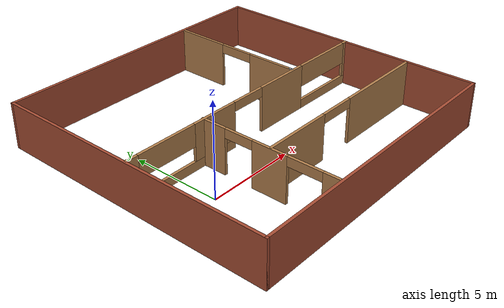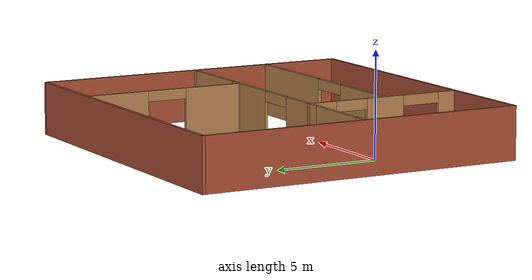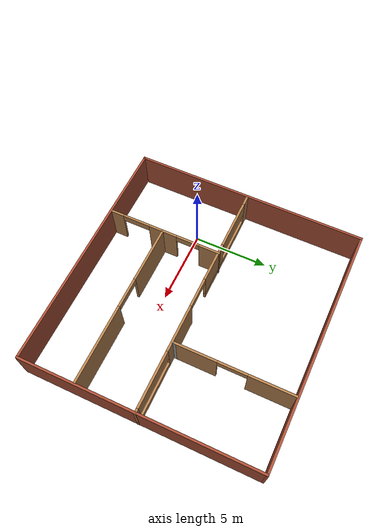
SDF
<?xml version='1.0'?>
<sdf version='1.6'>
  <model name='new_building'>
    <pose frame=''>5.0579 2.3979 0 0 -0 0</pose>
    <link name='Wall_10'>
      <pose frame=''>0.009337 -0.088235 0 0 -0 0</pose>
      <visual name='Wall_10_Visual_0'>
        <pose frame=''>-7.74118 0 1.25 0 -0 0</pose>
        <geometry>
          <box>
            <size>0.767634 0.15 2.5</size>
          </box>
        </geometry>
        <material>
          <script>
            <uri>file://media/materials/scripts/gazebo.material</uri>
            <name>Gazebo/Wood</name>
          </script>
          <ambient>0.435294 0.796078 0.67451 1</ambient>
        </material>
        <meta>
          <layer>0</layer>
        </meta>
      </visual>
      <collision name='Wall_10_Collision_0'>
        <geometry>
          <box>
            <size>0.767634 0.15 2.5</size>
          </box>
        </geometry>
        <pose frame=''>-7.74118 0 1.25 0 -0 0</pose>
      </collision>
      <visual name='Wall_10_Visual_1'>
        <pose frame=''>2.43175 0 1.25 0 -0 0</pose>
        <geometry>
          <box>
            <size>3.21266 0.15 2.5</size>
          </box>
        </geometry>
        <material>
          <script>
            <uri>file://media/materials/scripts/gazebo.material</uri>
            <name>Gazebo/Wood</name>
          </script>
          <ambient>0.435294 0.796078 0.67451 1</ambient>
        </material>
        <meta>
          <layer>0</layer>
        </meta>
      </visual>
      <collision name='Wall_10_Collision_1'>
        <geometry>
          <box>
            <size>3.21266 0.15 2.5</size>
          </box>
        </geometry>
        <pose frame=''>2.43175 0 1.25 0 -0 0</pose>
      </collision>
      <visual name='Wall_10_Visual_2'>
        <pose frame=''>-4.26571 0 0.25 0 -0 0</pose>
        <geometry>
          <box>
            <size>6.18331 0.15 0.5</size>
          </box>
        </geometry>
        <material>
          <script>
            <uri>file://media/materials/scripts/gazebo.material</uri>
            <name>Gazebo/Wood</name>
          </script>
          <ambient>0.435294 0.796078 0.67451 1</ambient>
        </material>
        <meta>
          <layer>0</layer>
        </meta>
      </visual>
      <collision name='Wall_10_Collision_2'>
        <geometry>
          <box>
            <size>6.18331 0.15 0.5</size>
          </box>
        </geometry>
        <pose frame=''>-4.26571 0 0.25 0 -0 0</pose>
      </collision>
      <visual name='Wall_10_Visual_3'>
        <pose frame=''>6.08154 0 0.25 0 -0 0</pose>
        <geometry>
          <box>
            <size>4.08692 0.15 0.5</size>
          </box>
        </geometry>
        <material>
          <script>
            <uri>file://media/materials/scripts/gazebo.material</uri>
            <name>Gazebo/Wood</name>
          </script>
          <ambient>0.435294 0.796078 0.67451 1</ambient>
        </material>
        <meta>
          <layer>0</layer>
        </meta>
      </visual>
      <collision name='Wall_10_Collision_3'>
        <geometry>
          <box>
            <size>4.08692 0.15 0.5</size>
          </box>
        </geometry>
        <pose frame=''>6.08154 0 0.25 0 -0 0</pose>
      </collision>
      <visual name='Wall_10_Visual_4'>
        <pose frame=''>-2.54457 0 1.5 0 -0 0</pose>
        <geometry>
          <box>
            <size>2.74103 0.15 2</size>
          </box>
        </geometry>
        <material>
          <script>
            <uri>file://media/materials/scripts/gazebo.material</uri>
            <name>Gazebo/Wood</name>
          </script>
          <ambient>0.435294 0.796078 0.67451 1</ambient>
        </material>
        <meta>
          <layer>0</layer>
        </meta>
      </visual>
      <collision name='Wall_10_Collision_4'>
        <geometry>
          <box>
            <size>2.74103 0.15 2</size>
          </box>
        </geometry>
        <pose frame=''>-2.54457 0 1.5 0 -0 0</pose>
      </collision>
      <visual name='Wall_10_Visual_5'>
        <pose frame=''>-2.54457 0 1.5 0 -0 0</pose>
        <geometry>
          <box>
            <size>2.74103 0.15 2</size>
          </box>
        </geometry>
        <material>
          <script>
            <uri>file://media/materials/scripts/gazebo.material</uri>
            <name>Gazebo/Wood</name>
          </script>
          <ambient>0.435294 0.796078 0.67451 1</ambient>
        </material>
        <meta>
          <layer>0</layer>
        </meta>
      </visual>
      <collision name='Wall_10_Collision_5'>
        <geometry>
          <box>
            <size>2.74103 0.15 2</size>
          </box>
        </geometry>
        <pose frame=''>-2.54457 0 1.5 0 -0 0</pose>
      </collision>
      <visual name='Wall_10_Visual_6'>
        <pose frame=''>7.94455 0 1.5 0 -0 0</pose>
        <geometry>
          <box>
            <size>0.360895 0.15 2</size>
          </box>
        </geometry>
        <material>
          <script>
            <uri>file://media/materials/scripts/gazebo.material</uri>
            <name>Gazebo/Wood</name>
          </script>
          <ambient>0.435294 0.796078 0.67451 1</ambient>
        </material>
        <meta>
          <layer>0</layer>
        </meta>
      </visual>
      <collision name='Wall_10_Collision_6'>
        <geometry>
          <box>
            <size>0.360895 0.15 2</size>
          </box>
        </geometry>
        <pose frame=''>7.94455 0 1.5 0 -0 0</pose>
      </collision>
      <visual name='Wall_10_Visual_7'>
        <pose frame=''>-5.63622 0 1.9 0 -0 0</pose>
        <geometry>
          <box>
            <size>3.44229 0.15 1.2</size>
          </box>
        </geometry>
        <material>
          <script>
            <uri>file://media/materials/scripts/gazebo.material</uri>
            <name>Gazebo/Wood</name>
          </script>
          <ambient>0.435294 0.796078 0.67451 1</ambient>
        </material>
        <meta>
          <layer>0</layer>
        </meta>
      </visual>
      <collision name='Wall_10_Collision_7'>
        <geometry>
          <box>
            <size>3.44229 0.15 1.2</size>
          </box>
        </geometry>
        <pose frame=''>-5.63622 0 1.9 0 -0 0</pose>
      </collision>
      <visual name='Wall_10_Visual_8'>
        <pose frame=''>5.90109 0 1.9 0 -0 0</pose>
        <geometry>
          <box>
            <size>3.72602 0.15 1.2</size>
          </box>
        </geometry>
        <material>
          <script>
            <uri>file://media/materials/scripts/gazebo.material</uri>
            <name>Gazebo/Wood</name>
          </script>
          <ambient>0.435294 0.796078 0.67451 1</ambient>
        </material>
        <meta>
          <layer>0</layer>
        </meta>
      </visual>
      <collision name='Wall_10_Collision_8'>
        <geometry>
          <box>
            <size>3.72602 0.15 1.2</size>
          </box>
        </geometry>
        <pose frame=''>5.90109 0 1.9 0 -0 0</pose>
      </collision>
      <visual name='Wall_10_Visual_9'>
        <pose frame=''>-0.174315 0 2.25 0 -0 0</pose>
        <geometry>
          <box>
            <size>1.99947 0.15 0.5</size>
          </box>
        </geometry>
        <material>
          <script>
            <uri>file://media/materials/scripts/gazebo.material</uri>
            <name>Gazebo/Wood</name>
          </script>
          <ambient>0.435294 0.796078 0.67451 1</ambient>
        </material>
        <meta>
          <layer>0</layer>
        </meta>
      </visual>
      <collision name='Wall_10_Collision_9'>
        <geometry>
          <box>
            <size>1.99947 0.15 0.5</size>
          </box>
        </geometry>
        <pose frame=''>-0.174315 0 2.25 0 -0 0</pose>
      </collision>
      <visual name='Wall_10_Visual_10'>
        <pose frame=''>-0.174315 0 2.25 0 -0 0</pose>
        <geometry>
          <box>
            <size>1.99947 0.15 0.5</size>
          </box>
        </geometry>
        <material>
          <script>
            <uri>file://media/materials/scripts/gazebo.material</uri>
            <name>Gazebo/Wood</name>
          </script>
          <ambient>0.435294 0.796078 0.67451 1</ambient>
        </material>
        <meta>
          <layer>0</layer>
        </meta>
      </visual>
      <collision name='Wall_10_Collision_10'>
        <geometry>
          <box>
            <size>1.99947 0.15 0.5</size>
          </box>
        </geometry>
        <pose frame=''>-0.174315 0 2.25 0 -0 0</pose>
      </collision>
    </link>
    <link name='Wall_14'>
      <pose frame=''>-3.24149 -3.84722 0 0 0 -1.5708</pose>
      <visual name='Wall_14_Visual_0'>
        <pose frame=''>-3.14694 0 1.25 0 -0 0</pose>
        <geometry>
          <box>
            <size>1.45611 0.15 2.5</size>
          </box>
        </geometry>
        <material>
          <script>
            <uri>file://media/materials/scripts/gazebo.material</uri>
            <name>Gazebo/Wood</name>
          </script>
          <ambient>0.760784 0.662745 0.627451 1</ambient>
        </material>
        <meta>
          <layer>0</layer>
        </meta>
      </visual>
      <collision name='Wall_14_Collision_0'>
        <geometry>
          <box>
            <size>1.45611 0.15 2.5</size>
          </box>
        </geometry>
        <pose frame=''>-3.14694 0 1.25 0 -0 0</pose>
      </collision>
      <visual name='Wall_14_Visual_1'>
        <pose frame=''>0.150408 0 1.25 0 -0 0</pose>
        <geometry>
          <box>
            <size>1.95966 0.15 2.5</size>
          </box>
        </geometry>
        <material>
          <script>
            <uri>file://media/materials/scripts/gazebo.material</uri>
            <name>Gazebo/Wood</name>
          </script>
          <ambient>0.760784 0.662745 0.627451 1</ambient>
        </material>
        <meta>
          <layer>0</layer>
        </meta>
      </visual>
      <collision name='Wall_14_Collision_1'>
        <geometry>
          <box>
            <size>1.95966 0.15 2.5</size>
          </box>
        </geometry>
        <pose frame=''>0.150408 0 1.25 0 -0 0</pose>
      </collision>
      <visual name='Wall_14_Visual_2'>
        <pose frame=''>3.43493 0 1.25 0 -0 0</pose>
        <geometry>
          <box>
            <size>0.88013 0.15 2.5</size>
          </box>
        </geometry>
        <material>
          <script>
            <uri>file://media/materials/scripts/gazebo.material</uri>
            <name>Gazebo/Wood</name>
          </script>
          <ambient>0.760784 0.662745 0.627451 1</ambient>
        </material>
        <meta>
          <layer>0</layer>
        </meta>
      </visual>
      <collision name='Wall_14_Collision_2'>
        <geometry>
          <box>
            <size>0.88013 0.15 2.5</size>
          </box>
        </geometry>
        <pose frame=''>3.43493 0 1.25 0 -0 0</pose>
      </collision>
      <visual name='Wall_14_Visual_3'>
        <pose frame=''>-1.62416 0 2.25 0 -0 0</pose>
        <geometry>
          <box>
            <size>1.58946 0.15 0.5</size>
          </box>
        </geometry>
        <material>
          <script>
            <uri>file://media/materials/scripts/gazebo.material</uri>
            <name>Gazebo/Wood</name>
          </script>
          <ambient>0.760784 0.662745 0.627451 1</ambient>
        </material>
        <meta>
          <layer>0</layer>
        </meta>
      </visual>
      <collision name='Wall_14_Collision_3'>
        <geometry>
          <box>
            <size>1.58946 0.15 0.5</size>
          </box>
        </geometry>
        <pose frame=''>-1.62416 0 2.25 0 -0 0</pose>
      </collision>
      <visual name='Wall_14_Visual_4'>
        <pose frame=''>2.06255 0 2.25 0 -0 0</pose>
        <geometry>
          <box>
            <size>1.86463 0.15 0.5</size>
          </box>
        </geometry>
        <material>
          <script>
            <uri>file://media/materials/scripts/gazebo.material</uri>
            <name>Gazebo/Wood</name>
          </script>
          <ambient>0.760784 0.662745 0.627451 1</ambient>
        </material>
        <meta>
          <layer>0</layer>
        </meta>
      </visual>
      <collision name='Wall_14_Collision_4'>
        <geometry>
          <box>
            <size>1.86463 0.15 0.5</size>
          </box>
        </geometry>
        <pose frame=''>2.06255 0 2.25 0 -0 0</pose>
      </collision>
    </link>
    <link name='Wall_17'>
      <pose frame=''>2.36618 -4.00829 0 0 -0 0</pose>
      <visual name='Wall_17_Visual_0'>
        <pose frame=''>-3.66911 0 1.25 0 -0 0</pose>
        <geometry>
          <box>
            <size>3.91178 0.15 2.5</size>
          </box>
        </geometry>
        <material>
          <script>
            <uri>file://media/materials/scripts/gazebo.material</uri>
            <name>Gazebo/Wood</name>
          </script>
          <ambient>1 1 1 1</ambient>
        </material>
        <meta>
          <layer>0</layer>
        </meta>
      </visual>
      <collision name='Wall_17_Collision_0'>
        <geometry>
          <box>
            <size>3.91178 0.15 2.5</size>
          </box>
        </geometry>
        <pose frame=''>-3.66911 0 1.25 0 -0 0</pose>
      </collision>
      <visual name='Wall_17_Visual_1'>
        <pose frame=''>2.98223 0 1.25 0 -0 0</pose>
        <geometry>
          <box>
            <size>5.28554 0.15 2.5</size>
          </box>
        </geometry>
        <material>
          <script>
            <uri>file://media/materials/scripts/gazebo.material</uri>
            <name>Gazebo/Wood</name>
          </script>
          <ambient>1 1 1 1</ambient>
        </material>
        <meta>
          <layer>0</layer>
        </meta>
      </visual>
      <collision name='Wall_17_Collision_1'>
        <geometry>
          <box>
            <size>5.28554 0.15 2.5</size>
          </box>
        </geometry>
        <pose frame=''>2.98223 0 1.25 0 -0 0</pose>
      </collision>
      <visual name='Wall_17_Visual_2'>
        <pose frame=''>-0.686882 0 2.25 0 -0 0</pose>
        <geometry>
          <box>
            <size>2.05267 0.15 0.5</size>
          </box>
        </geometry>
        <material>
          <script>
            <uri>file://media/materials/scripts/gazebo.material</uri>
            <name>Gazebo/Wood</name>
          </script>
          <ambient>1 1 1 1</ambient>
        </material>
        <meta>
          <layer>0</layer>
        </meta>
      </visual>
      <collision name='Wall_17_Collision_2'>
        <geometry>
          <box>
            <size>2.05267 0.15 0.5</size>
          </box>
        </geometry>
        <pose frame=''>-0.686882 0 2.25 0 -0 0</pose>
      </collision>
    </link>
    <link name='Wall_20'>
      <pose frame=''>3.40352 3.9053 0 0 0 -1.5708</pose>
      <visual name='Wall_20_Visual_0'>
        <pose frame=''>-2.35334 0 1.25 0 -0 0</pose>
        <geometry>
          <box>
            <size>3.04332 0.15 2.5</size>
          </box>
        </geometry>
        <material>
          <script>
            <uri>file://media/materials/scripts/gazebo.material</uri>
            <name>Gazebo/Wood</name>
          </script>
          <ambient>0.760784 0.662745 0.627451 1</ambient>
        </material>
        <meta>
          <layer>0</layer>
        </meta>
      </visual>
      <collision name='Wall_20_Collision_0'>
        <geometry>
          <box>
            <size>3.04332 0.15 2.5</size>
          </box>
        </geometry>
        <pose frame=''>-2.35334 0 1.25 0 -0 0</pose>
      </collision>
      <visual name='Wall_20_Visual_1'>
        <pose frame=''>2.48593 0 1.25 0 -0 0</pose>
        <geometry>
          <box>
            <size>2.77813 0.15 2.5</size>
          </box>
        </geometry>
        <material>
          <script>
            <uri>file://media/materials/scripts/gazebo.material</uri>
            <name>Gazebo/Wood</name>
          </script>
          <ambient>0.760784 0.662745 0.627451 1</ambient>
        </material>
        <meta>
          <layer>0</layer>
        </meta>
      </visual>
      <collision name='Wall_20_Collision_1'>
        <geometry>
          <box>
            <size>2.77813 0.15 2.5</size>
          </box>
        </geometry>
        <pose frame=''>2.48593 0 1.25 0 -0 0</pose>
      </collision>
      <visual name='Wall_20_Visual_2'>
        <pose frame=''>0.132595 0 2.25 0 -0 0</pose>
        <geometry>
          <box>
            <size>1.92854 0.15 0.5</size>
          </box>
        </geometry>
        <material>
          <script>
            <uri>file://media/materials/scripts/gazebo.material</uri>
            <name>Gazebo/Wood</name>
          </script>
          <ambient>0.760784 0.662745 0.627451 1</ambient>
        </material>
        <meta>
          <layer>0</layer>
        </meta>
      </visual>
      <collision name='Wall_20_Collision_2'>
        <geometry>
          <box>
            <size>1.92854 0.15 0.5</size>
          </box>
        </geometry>
        <pose frame=''>0.132595 0 2.25 0 -0 0</pose>
      </collision>
    </link>
    <link name='Wall_21'>
      <collision name='Wall_21_Collision'>
        <geometry>
          <box>
            <size>0.25 0.15 2.5</size>
          </box>
        </geometry>
        <pose frame=''>0 0 1.25 0 -0 0</pose>
      </collision>
      <visual name='Wall_21_Visual'>
        <pose frame=''>0 0 1.25 0 -0 0</pose>
        <geometry>
          <box>
            <size>0.25 0.15 2.5</size>
          </box>
        </geometry>
        <material>
          <script>
            <uri>file://media/materials/scripts/gazebo.material</uri>
            <name>Gazebo/Grey</name>
          </script>
          <ambient>1 1 1 1</ambient>
        </material>
        <meta>
          <layer>0</layer>
        </meta>
      </visual>
      <pose frame=''>3.40352 0.055296 0 0 0 -1.5708</pose>
    </link>
    <link name='Wall_3'>
      <collision name='Wall_3_Collision'>
        <geometry>
          <box>
            <size>16.25 0.15 2.5</size>
          </box>
        </geometry>
        <pose frame=''>0 0 1.25 0 -0 0</pose>
      </collision>
      <visual name='Wall_3_Visual'>
        <pose frame=''>0 0 1.25 0 -0 0</pose>
        <geometry>
          <box>
            <size>16.25 0.15 2.5</size>
          </box>
        </geometry>
        <material>
          <script>
            <uri>file://media/materials/scripts/gazebo.material</uri>
            <name>Gazebo/Bricks</name>
          </script>
          <ambient>1 1 1 1</ambient>
        </material>
        <meta>
          <layer>0</layer>
        </meta>
      </visual>
      <pose frame=''>-0.009335 -7.8 0 0 -0 0</pose>
    </link>
    <link name='Wall_4'>
      <collision name='Wall_4_Collision'>
        <geometry>
          <box>
            <size>15.75 0.15 2.5</size>
          </box>
        </geometry>
        <pose frame=''>0 0 1.25 0 -0 0</pose>
      </collision>
      <visual name='Wall_4_Visual'>
        <pose frame=''>0 0 1.25 0 -0 0</pose>
        <geometry>
          <box>
            <size>15.75 0.15 2.5</size>
          </box>
        </geometry>
        <material>
          <script>
            <uri>file://media/materials/scripts/gazebo.material</uri>
            <name>Gazebo/Bricks</name>
          </script>
          <ambient>1 1 1 1</ambient>
        </material>
        <meta>
          <layer>0</layer>
        </meta>
      </visual>
      <pose frame=''>8.04067 0 0 0 -0 1.5708</pose>
    </link>
    <link name='Wall_5'>
      <collision name='Wall_5_Collision'>
        <geometry>
          <box>
            <size>16.25 0.15 2.5</size>
          </box>
        </geometry>
        <pose frame=''>0 0 1.25 0 -0 0</pose>
      </collision>
      <visual name='Wall_5_Visual'>
        <pose frame=''>0 0 1.25 0 -0 0</pose>
        <geometry>
          <box>
            <size>16.25 0.15 2.5</size>
          </box>
        </geometry>
        <material>
          <script>
            <uri>file://media/materials/scripts/gazebo.material</uri>
            <name>Gazebo/Bricks</name>
          </script>
          <ambient>1 1 1 1</ambient>
        </material>
        <meta>
          <layer>0</layer>
        </meta>
      </visual>
      <pose frame=''>-0.009335 7.8 0 0 -0 3.14159</pose>
    </link>
    <link name='Wall_6'>
      <collision name='Wall_6_Collision'>
        <geometry>
          <box>
            <size>15.75 0.15 2.5</size>
          </box>
        </geometry>
        <pose frame=''>0 0 1.25 0 -0 0</pose>
      </collision>
      <visual name='Wall_6_Visual'>
        <pose frame=''>0 0 1.25 0 -0 0</pose>
        <geometry>
          <box>
            <size>15.75 0.15 2.5</size>
          </box>
        </geometry>
        <material>
          <script>
            <uri>file://media/materials/scripts/gazebo.material</uri>
            <name>Gazebo/Bricks</name>
          </script>
          <ambient>1 1 1 1</ambient>
        </material>
        <meta>
          <layer>0</layer>
        </meta>
      </visual>
      <pose frame=''>-8.05934 0 0 0 0 -1.5708</pose>
    </link>
    <static>1</static>
  </model>
</sdf>
